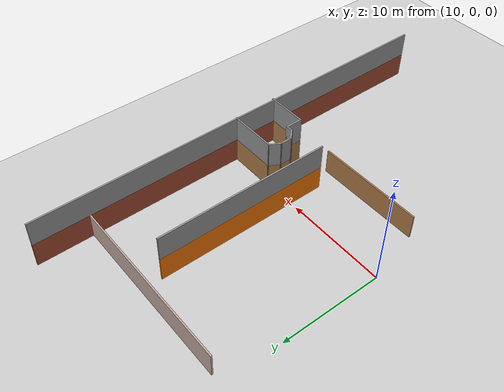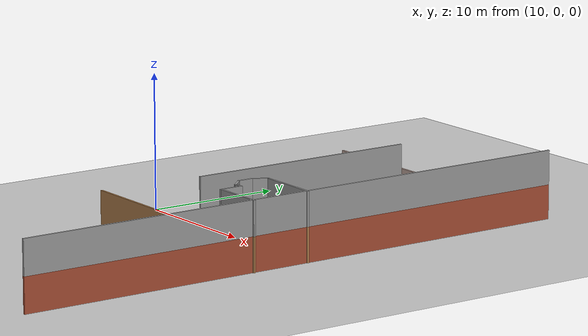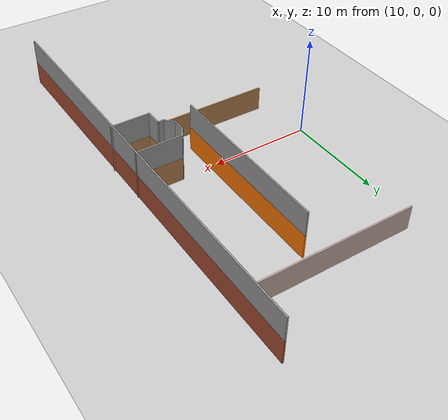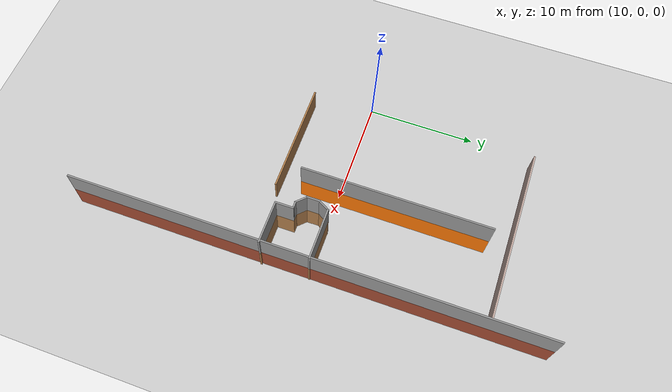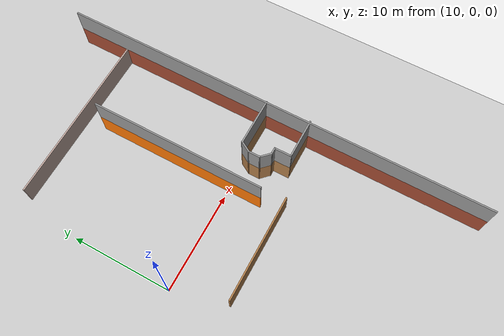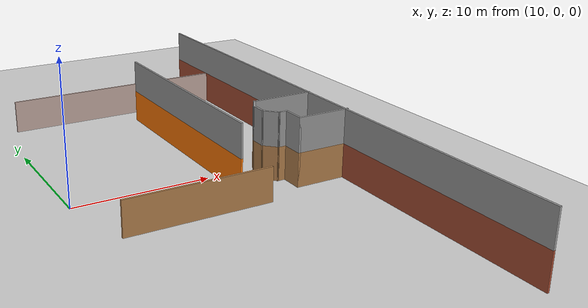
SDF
<sdf version="1.7">
 <world name="default">
  <model name="ground_plane">
   <static>1</static>
   <link name="link">
    <collision name="collision">
     <geometry><plane><normal>0 0 1</normal><size>100 100</size></plane></geometry>
     <surface><friction><ode><mu>100</mu><mu2>50</mu2></ode></friction></surface>
    </collision>
    <visual name="visual">
     <cast_shadows>0</cast_shadows>
     <geometry><plane><normal>0 0 1</normal><size>100 100</size></plane></geometry>
     <material>
      <script><uri>file://media/materials/scripts/gazebo.material</uri><name>Gazebo/Grey</name></script>
     </material>
    </visual>
   </link>
  </model>
  <model name="AKW_0">
   <pose>0.482897 -0.466564 0 0 -0 0</pose>
   <link name="Wall_1">
    <collision name="Wall_1_Collision">
     <geometry><box><size>43.25 0.15 2.5</size></box></geometry>
     <pose>0 0 1.25 0 -0 0</pose>
    </collision>
    <visual name="Wall_1_Visual">
     <pose>0 0 1.25 0 -0 0</pose>
     <geometry><box><size>43.25 0.15 2.5</size></box></geometry>
     <material>
      <script><uri>file://media/materials/scripts/gazebo.material</uri><name>Gazebo/Bricks</name></script>
      <ambient>1 1 1 1</ambient>
     </material>
     <meta><layer>0</layer></meta>
    </visual>
    <pose>27.8567 0.002503 0 0 -0 1.5708</pose>
   </link>
   <link name="Wall_100">
    <collision name="Wall_100_Collision">
     <geometry><box><size>4.75 0.15 2.5</size></box></geometry>
     <pose>0 0 1.25 0 -0 0</pose>
    </collision>
    <visual name="Wall_100_Visual">
     <pose>0 0 1.25 0 -0 0</pose>
     <geometry><box><size>4.75 0.15 2.5</size></box></geometry>
     <material>
      <script><uri>file://media/materials/scripts/gazebo.material</uri><name>Gazebo/Wood</name></script>
      <ambient>1 1 1 1</ambient>
     </material>
     <meta><layer>0</layer></meta>
    </visual>
    <pose>25.6171 0.610399 0 0 -0 3.14159</pose>
   </link>
   <link name="Wall_101">
    <collision name="Wall_101_Collision">
     <geometry><box><size>1.25 0.15 2.5</size></box></geometry>
     <pose>0 0 1.25 0 -0 0</pose>
    </collision>
    <visual name="Wall_101_Visual">
     <pose>0 0 1.25 0 -0 0</pose>
     <geometry><box><size>1.25 0.15 2.5</size></box></geometry>
     <material>
      <script><uri>file://media/materials/scripts/gazebo.material</uri><name>Gazebo/Wood</name></script>
      <ambient>1 1 1 1</ambient>
     </material>
     <meta><layer>0</layer></meta>
    </visual>
    <pose>23.0421 0.134085 0 0 -0 -2.0944</pose>
   </link>
   <link name="Wall_102">
    <collision name="Wall_102_Collision">
     <geometry><box><size>1.25 0.15 2.5</size></box></geometry>
     <pose>0 0 1.25 0 -0 0</pose>
    </collision>
    <visual name="Wall_102_Visual">
     <pose>0 0 1.25 0 -0 0</pose>
     <geometry><box><size>1.25 0.15 2.5</size></box></geometry>
     <material>
      <script><uri>file://media/materials/scripts/gazebo.material</uri><name>Gazebo/Wood</name></script>
      <ambient>1 1 1 1</ambient>
     </material>
     <meta><layer>0</layer></meta>
    </visual>
    <pose>22.7671 -0.892229 0 0 -0 -1.5708</pose>
   </link>
   <link name="Wall_103">
    <collision name="Wall_103_Collision">
     <geometry><box><size>1.25 0.15 2.5</size></box></geometry>
     <pose>0 0 1.25 0 -0 0</pose>
    </collision>
    <visual name="Wall_103_Visual">
     <pose>0 0 1.25 0 -0 0</pose>
     <geometry><box><size>1.25 0.15 2.5</size></box></geometry>
     <material>
      <script><uri>file://media/materials/scripts/gazebo.material</uri><name>Gazebo/Wood</name></script>
      <ambient>1 1 1 1</ambient>
     </material>
     <meta><layer>0</layer></meta>
    </visual>
    <pose>23.156 -1.83114 0 0 -0 -0.785398</pose>
   </link>
   <link name="Wall_104">
    <collision name="Wall_104_Collision">
     <geometry><box><size>0.75 0.15 2.5</size></box></geometry>
     <pose>0 0 1.25 0 -0 0</pose>
    </collision>
    <visual name="Wall_104_Visual">
     <pose>0 0 1.25 0 -0 0</pose>
     <geometry><box><size>0.75 0.15 2.5</size></box></geometry>
     <material>
      <script><uri>file://media/materials/scripts/gazebo.material</uri><name>Gazebo/Wood</name></script>
      <ambient>1 1 1 1</ambient>
     </material>
     <meta><layer>0</layer></meta>
    </visual>
    <pose>23.8449 -2.22005 0 0 -0 0</pose>
   </link>
   <link name="Wall_105">
    <collision name="Wall_105_Collision">
     <geometry><box><size>1.75 0.15 2.5</size></box></geometry>
     <pose>0 0 1.25 0 -0 0</pose>
    </collision>
    <visual name="Wall_105_Visual">
     <pose>0 0 1.25 0 -0 0</pose>
     <geometry><box><size>1.75 0.15 2.5</size></box></geometry>
     <material>
      <script><uri>file://media/materials/scripts/gazebo.material</uri><name>Gazebo/Wood</name></script>
      <ambient>1 1 1 1</ambient>
     </material>
     <meta><layer>0</layer></meta>
    </visual>
    <pose>24.1449 -3.02005 0 0 -0 -1.5708</pose>
   </link>
   <link name="Wall_106">
    <collision name="Wall_106_Collision">
     <geometry><box><size>4 0.15 2.5</size></box></geometry>
     <pose>0 0 1.25 0 -0 0</pose>
    </collision>
    <visual name="Wall_106_Visual">
     <pose>0 0 1.25 0 -0 0</pose>
     <geometry><box><size>4 0.15 2.5</size></box></geometry>
     <material>
      <script><uri>file://media/materials/scripts/gazebo.material</uri><name>Gazebo/Wood</name></script>
      <ambient>1 1 1 1</ambient>
     </material>
     <meta><layer>0</layer></meta>
    </visual>
    <pose>26.0699 -3.82005 0 0 -0 0</pose>
   </link>
   <link name="Wall_131">
    <collision name="Wall_131_Collision">
     <geometry><box><size>17.25 0.15 2.5</size></box></geometry>
     <pose>0 0 1.25 0 -0 0</pose>
    </collision>
    <visual name="Wall_131_Visual">
     <pose>0 0 1.25 0 -0 0</pose>
     <geometry><box><size>17.25 0.15 2.5</size></box></geometry>
     <material>
      <script><uri>file://media/materials/scripts/gazebo.material</uri><name>Gazebo/Grey</name></script>
      <ambient>0.996078 0.47451 0.0196078 1</ambient>
     </material>
     <meta><layer>0</layer></meta>
    </visual>
    <pose>20.2548 5.69466 0 0 -0 1.5708</pose>
   </link>
   <link name="Wall_224">
    <collision name="Wall_224_Collision">
     <geometry><box><size>43.25 0.15 2.5</size></box></geometry>
     <pose>0 0 1.25 0 -0 0</pose>
    </collision>
    <visual name="Wall_224_Visual">
     <pose>0 0 1.25 0 -0 0</pose>
     <geometry><box><size>43.25 0.15 2.5</size></box></geometry>
     <material>
      <script><uri>file://media/materials/scripts/gazebo.material</uri><name>Gazebo/Grey</name></script>
      <ambient>1 1 1 1</ambient>
     </material>
     <meta><layer>1</layer></meta>
    </visual>
    <pose>27.8567 0.002503 2.5 0 -0 1.5708</pose>
   </link>
   <link name="Wall_281">
    <collision name="Wall_281_Collision">
     <geometry><box><size>4.75 0.15 2.5</size></box></geometry>
     <pose>0 0 1.25 0 -0 0</pose>
    </collision>
    <visual name="Wall_281_Visual">
     <pose>0 0 1.25 0 -0 0</pose>
     <geometry><box><size>4.75 0.15 2.5</size></box></geometry>
     <material>
      <script><uri>file://media/materials/scripts/gazebo.material</uri><name>Gazebo/Grey</name></script>
      <ambient>1 1 1 1</ambient>
     </material>
     <meta><layer>1</layer></meta>
    </visual>
    <pose>25.6171 0.610399 2.5 0 -0 3.14159</pose>
   </link>
   <link name="Wall_282">
    <collision name="Wall_282_Collision">
     <geometry><box><size>1.25 0.15 2.5</size></box></geometry>
     <pose>0 0 1.25 0 -0 0</pose>
    </collision>
    <visual name="Wall_282_Visual">
     <pose>0 0 1.25 0 -0 0</pose>
     <geometry><box><size>1.25 0.15 2.5</size></box></geometry>
     <material>
      <script><uri>file://media/materials/scripts/gazebo.material</uri><name>Gazebo/Grey</name></script>
      <ambient>1 1 1 1</ambient>
     </material>
     <meta><layer>1</layer></meta>
    </visual>
    <pose>23.0421 0.134085 2.5 0 -0 -2.0944</pose>
   </link>
   <link name="Wall_283">
    <collision name="Wall_283_Collision">
     <geometry><box><size>1.25 0.15 2.5</size></box></geometry>
     <pose>0 0 1.25 0 -0 0</pose>
    </collision>
    <visual name="Wall_283_Visual">
     <pose>0 0 1.25 0 -0 0</pose>
     <geometry><box><size>1.25 0.15 2.5</size></box></geometry>
     <material>
      <script><uri>file://media/materials/scripts/gazebo.material</uri><name>Gazebo/Grey</name></script>
      <ambient>1 1 1 1</ambient>
     </material>
     <meta><layer>1</layer></meta>
    </visual>
    <pose>22.7671 -0.892229 2.5 0 -0 -1.5708</pose>
   </link>
   <link name="Wall_284">
    <collision name="Wall_284_Collision">
     <geometry><box><size>1.25 0.15 2.5</size></box></geometry>
     <pose>0 0 1.25 0 -0 0</pose>
    </collision>
    <visual name="Wall_284_Visual">
     <pose>0 0 1.25 0 -0 0</pose>
     <geometry><box><size>1.25 0.15 2.5</size></box></geometry>
     <material>
      <script><uri>file://media/materials/scripts/gazebo.material</uri><name>Gazebo/Grey</name></script>
      <ambient>1 1 1 1</ambient>
     </material>
     <meta><layer>1</layer></meta>
    </visual>
    <pose>23.156 -1.83114 2.5 0 -0 -0.785398</pose>
   </link>
   <link name="Wall_285">
    <collision name="Wall_285_Collision">
     <geometry><box><size>0.75 0.15 2.5</size></box></geometry>
     <pose>0 0 1.25 0 -0 0</pose>
    </collision>
    <visual name="Wall_285_Visual">
     <pose>0 0 1.25 0 -0 0</pose>
     <geometry><box><size>0.75 0.15 2.5</size></box></geometry>
     <material>
      <script><uri>file://media/materials/scripts/gazebo.material</uri><name>Gazebo/Grey</name></script>
      <ambient>1 1 1 1</ambient>
     </material>
     <meta><layer>1</layer></meta>
    </visual>
    <pose>23.8449 -2.22005 2.5 0 -0 0</pose>
   </link>
   <link name="Wall_286">
    <collision name="Wall_286_Collision">
     <geometry><box><size>1.75 0.15 2.5</size></box></geometry>
     <pose>0 0 1.25 0 -0 0</pose>
    </collision>
    <visual name="Wall_286_Visual">
     <pose>0 0 1.25 0 -0 0</pose>
     <geometry><box><size>1.75 0.15 2.5</size></box></geometry>
     <material>
      <script><uri>file://media/materials/scripts/gazebo.material</uri><name>Gazebo/Grey</name></script>
      <ambient>1 1 1 1</ambient>
     </material>
     <meta><layer>1</layer></meta>
    </visual>
    <pose>24.1449 -3.02005 2.5 0 -0 -1.5708</pose>
   </link>
   <link name="Wall_287">
    <collision name="Wall_287_Collision">
     <geometry><box><size>4 0.15 2.5</size></box></geometry>
     <pose>0 0 1.25 0 -0 0</pose>
    </collision>
    <visual name="Wall_287_Visual">
     <pose>0 0 1.25 0 -0 0</pose>
     <geometry><box><size>4 0.15 2.5</size></box></geometry>
     <material>
      <script><uri>file://media/materials/scripts/gazebo.material</uri><name>Gazebo/Grey</name></script>
      <ambient>1 1 1 1</ambient>
     </material>
     <meta><layer>1</layer></meta>
    </visual>
    <pose>26.0699 -3.82005 2.5 0 -0 0</pose>
   </link>
   <link name="Wall_308">
    <collision name="Wall_308_Collision">
     <geometry><box><size>17.25 0.15 2.5</size></box></geometry>
     <pose>0 0 1.25 0 -0 0</pose>
    </collision>
    <visual name="Wall_308_Visual">
     <pose>0 0 1.25 0 -0 0</pose>
     <geometry><box><size>17.25 0.15 2.5</size></box></geometry>
     <material>
      <script><uri>file://media/materials/scripts/gazebo.material</uri><name>Gazebo/Grey</name></script>
      <ambient>1 1 1 1</ambient>
     </material>
     <meta><layer>1</layer></meta>
    </visual>
    <pose>20.2548 5.69466 2.5 0 -0 1.5708</pose>
   </link>
   <link name="Wall_44">
    <collision name="Wall_44_Collision">
     <geometry><box><size>17.25 0.15 2.5</size></box></geometry>
     <pose>0 0 1.25 0 -0 0</pose>
    </collision>
    <visual name="Wall_44_Visual">
     <pose>0 0 1.25 0 -0 0</pose>
     <geometry><box><size>17.25 0.15 2.5</size></box></geometry>
     <material>
      <script><uri>file://media/materials/scripts/gazebo.material</uri><name>Gazebo/Grey</name></script>
      <ambient>0.760784 0.662745 0.627451 1</ambient>
     </material>
     <meta><layer>0</layer></meta>
    </visual>
    <pose>19.2857 16.26 0 0 -0 0</pose>
   </link>
   <link name="Wall_92">
    <collision name="Wall_92_Collision">
     <geometry><box><size>10.5 0.15 2.5</size></box></geometry>
     <pose>0 0 1.25 0 -0 0</pose>
    </collision>
    <visual name="Wall_92_Visual">
     <pose>0 0 1.25 0 -0 0</pose>
     <geometry><box><size>10.5 0.15 2.5</size></box></geometry>
     <material>
      <script><uri>file://media/materials/scripts/gazebo.material</uri><name>Gazebo/Wood</name></script>
      <ambient>1 1 1 1</ambient>
     </material>
     <meta><layer>0</layer></meta>
    </visual>
    <pose>16.1283 -4.96222 0 0 -0 0</pose>
   </link>
   <static>1</static>
  </model>
 </world>
</sdf>
